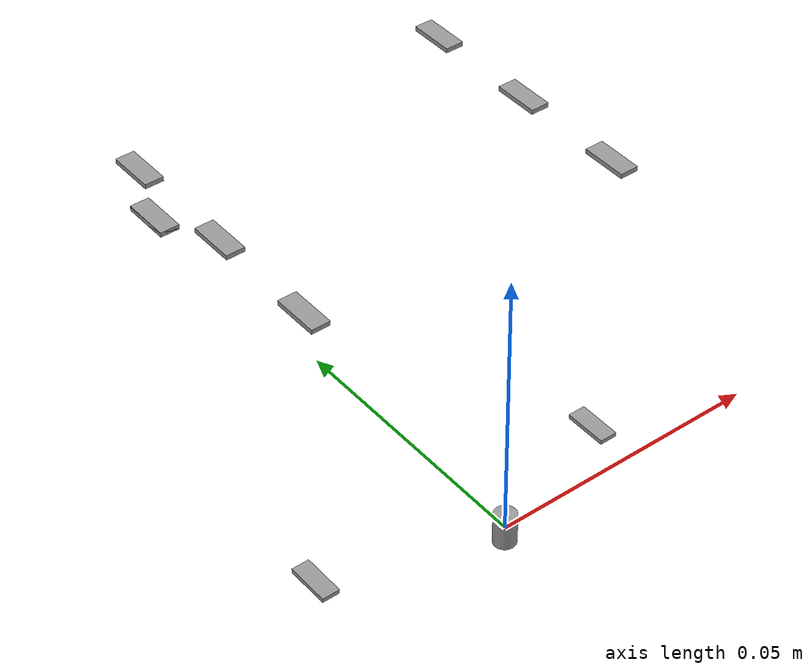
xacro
<?xml version="1.0"?>

<robot xmlns:xacro="http://www.ros.org/wiki/xacro"
       name="fingertip_board">

    <xacro:include filename="$(find iai_fingertip_description)/urdf/fingertip_sensor_macro.urdf.xacro" />

  <xacro:macro name="fingertip_board_xacro" params="prefix parent">

    <!-- Joint connecting the parent to our frame_in -->
    <joint name="${prefix}adapter_base_joint" type="fixed">
      <origin xyz="0 0 0.0" rpy="0 0 0" />
      <parent link="${parent}"/>
      <child link="${prefix}adapter_fingertip_base_frame_in"/>
    </joint>

    <!-- link for the adapter plate -->
    <link name="${prefix}adapter_fingertip_base_frame_in">
      <visual>
        <origin rpy="0 0 0" xyz="0 0 0"/>
        <geometry>
                     <cylinder length="0.006" radius="0.002"/>
        </geometry>
        <material name="Grey"/>
      </visual>
    </link>

    <!-- Empty link just to get the frame out -->
    <link name="${prefix}adapter_fingertip_base_frame_out"/>

    <!-- joint positioning the frame_out -->
    <joint name="${prefix}adapter_fingertip_base_trans_frame_out" type="fixed">
      <origin xyz="0 0 0.016" rpy="0 0 0" />
      <parent link="${prefix}adapter_fingertip_base_frame_in" />
      <child link="${prefix}adapter_fingertip_base_frame_out" />
      <axis xyz="0 0 0" />
    </joint>

    <!-- Empty link just to get the normal of sensors -->
    <link name="${prefix}_fingertip_normal"/>

    <!-- joint positioning the frame_out -->
    <joint name="${prefix}_fingertip_normal_joint" type="fixed">
      <origin xyz="0 0 0.0" rpy="0 ${-pi/2.0} 0" />
      <parent link="${prefix}adapter_fingertip_base_frame_in" />
      <child link="${prefix}_fingertip_normal" />
      <axis xyz="0 0 0" />
    </joint>

    <!-- Now joint connecting the actual fingertip pcb -->

    <joint name="${prefix}_fingertip_base_joint" type="fixed">
      <origin xyz="0 0 0" rpy="0 0 0" />
      <parent link="${prefix}adapter_fingertip_base_frame_in"/>
      <child link="${prefix}fingertip_frame_in"/>
    </joint>

    <!-- Link for the finger sensor-->
    <link name="${prefix}fingertip_frame_in">
      <visual>
        <origin rpy="0 0 0" xyz="0 0 0"/>
        <geometry>
          <mesh filename="package://iai_fingertip_description/meshes/fingertip_m.stl" scale="0.001 0.001 0.001"/>
        </geometry>
        <material name="White"/>
      </visual>
    </link>

<!-- suffix sens_no sensor_joint_xyz sensor_joint_rpy -->
   <xacro:vl_sensor suffix="sensor" sens_no ="0" sensor_joint_xyz="0.0028 0.0566 0" sensor_joint_rpy=" 0 0 0 "/>
   <xacro:vl_sensor suffix="sensor" sens_no ="1" sensor_joint_xyz="0.0382 0.0566 0" sensor_joint_rpy=" 0 0 0 "/>
   <xacro:vl_sensor suffix="sensor" sens_no ="2" sensor_joint_xyz="0.0028 0.0435 0" sensor_joint_rpy=" 0 0 0 "/>
   <xacro:vl_sensor suffix="sensor" sens_no ="3" sensor_joint_xyz="0.0382 0.0435 0" sensor_joint_rpy=" 0 0 0 "/>
   <xacro:vl_sensor suffix="sensor" sens_no ="4" sensor_joint_xyz="0.0028 0.0307 0" sensor_joint_rpy=" 0 0 0 "/>
   <xacro:vl_sensor suffix="sensor" sens_no ="5" sensor_joint_xyz="0.0382 0.0307 0" sensor_joint_rpy=" 0 0 0 "/>
   <xacro:vl_sensor suffix="sensor" sens_no ="6" sensor_joint_xyz="0.0028 0.0498 0" sensor_joint_rpy=" 0 3.1415 0 "/>
   <xacro:vl_sensor suffix="sensor" sens_no ="7" sensor_joint_xyz="0.0382 0.0498 0" sensor_joint_rpy=" 0 3.1415 0 "/>
   <xacro:vl_sensor suffix="sensor" sens_no ="8" sensor_joint_xyz="0.003 0.065 -0.003" sensor_joint_rpy=" ${-pi/2.0} 0 0 "/>
   <xacro:vl_sensor suffix="sensor" sens_no ="9" sensor_joint_xyz="0.038 0.065 -0.003" sensor_joint_rpy=" ${-pi/2.0} 0 0 "/>

  </xacro:macro>

<link name="base_link">
        <visual>
          <geometry>
                      <mesh filename="package://iai_fingertip_description/meshes/fingertip_m.stl" scale="0.001 0.001 0.001"/>
          </geometry>
        </visual>
      </link>

<xacro:fingertip_board_xacro prefix="fingertip" parent ="base_link" />

</robot>

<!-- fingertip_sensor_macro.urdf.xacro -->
<robot xmlns:xacro="http://www.ros.org/wiki/xacro">
    <!-- Macro to create sensors -->
    <xacro:macro name="vl_sensor" params="suffix sens_no sensor_joint_xyz sensor_joint_rpy">

    <joint name="${prefix}_fingertip_${suffix}_s${sens_no}_joint" type="fixed">
        <origin xyz="${sensor_joint_xyz}" rpy="${sensor_joint_rpy}"/>

      <parent link="${prefix}fingertip_frame_in"/>
      <child link="${prefix}_fingertip_${suffix}_s${sens_no}"/>
    </joint>

    <!-- Link for the vl6180x sensor-->
    <link name="${prefix}_fingertip_${suffix}_s${sens_no}">
      <visual>
        <origin rpy="${sensor_joint_rpy}" xyz="${sensor_joint_xyz}"/>
        <geometry>
<box size="0.004 0.010 0.001" />
        </geometry>
        <material name="Grey"/>
      </visual>
    </link>

    </xacro:macro>
</robot>
